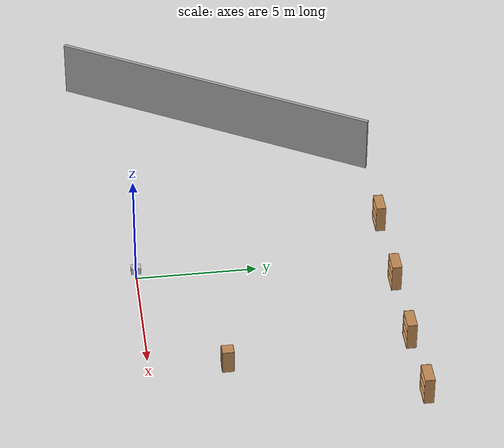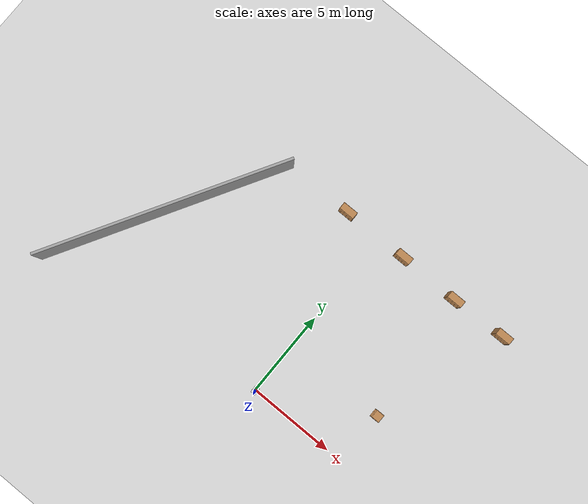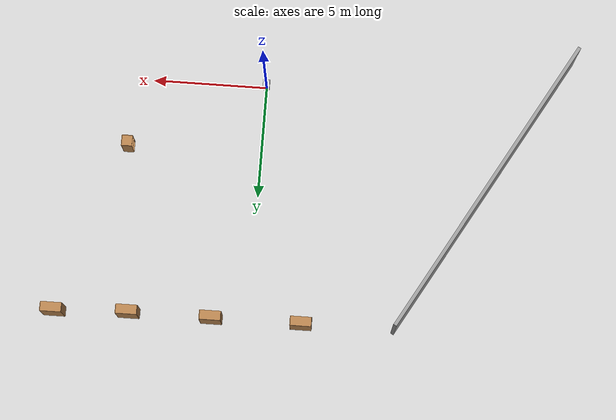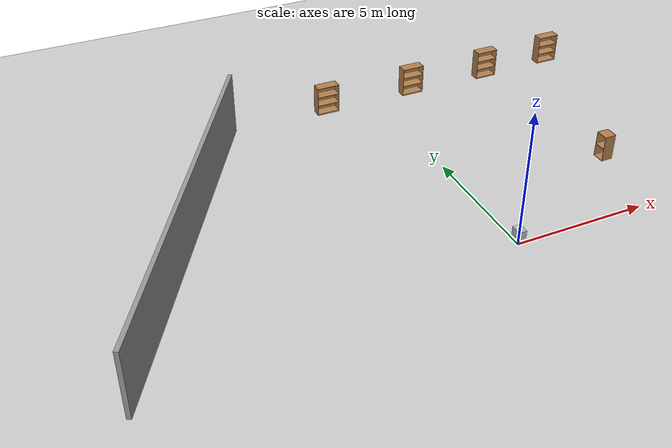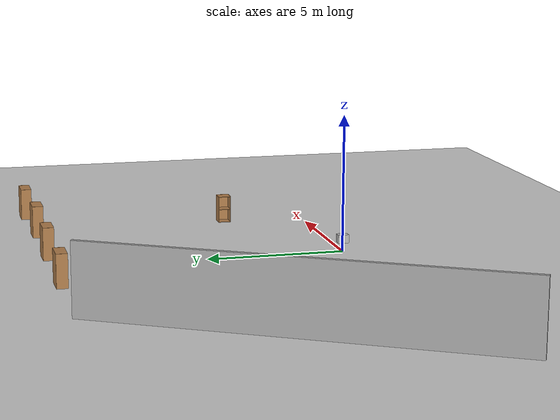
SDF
<sdf version="1.6">
 <world name="default">
  <model name="animated_box5">
   <pose>0 0 0.5 0 0 0</pose>
   <link name="link">
    <collision name="animated_box_collision5"><geometry><box><size>0.3 0.4 0.3</size></box></geometry></collision>
    <visual name="visual"><geometry><box><size>0.3 0.4 0.3</size></box></geometry></visual>
    <inertial>
     <inertia><ixx>1</ixx><ixy>0</ixy><ixz>0</ixz><iyy>1</iyy><iyz>0</iyz><izz>1</izz></inertia>
     <mass>1</mass>
    </inertial>
    <gravity>0</gravity>
   </link>
   <plugin name="push_animate5" filename="libbox_forward_movement18.so"/>
  </model>
  <model name="ground_plane">
   <static>1</static>
   <link name="link">
    <collision name="collision">
     <geometry><plane><normal>0 0 1</normal><size>100 100</size></plane></geometry>
     <surface><friction><ode><mu>100</mu><mu2>50</mu2></ode></friction></surface>
    </collision>
    <visual name="visual">
     <cast_shadows>0</cast_shadows>
     <geometry><plane><normal>0 0 1</normal><size>100 100</size></plane></geometry>
     <material>
      <script><uri>file://media/materials/scripts/gazebo.material</uri><name>Gazebo/Grey</name></script>
     </material>
    </visual>
   </link>
  </model>
  <model name="room10">
   <pose>-9.79599 4.32214 0 0 -0 0</pose>
   <link name="Wall_0">
    <collision name="Wall_0_Collision">
     <geometry><box><size>14.5 0.15 2.5</size></box></geometry>
     <pose>0 0 1.25 0 -0 0</pose>
    </collision>
    <visual name="Wall_0_Visual">
     <pose>0 0 1.25 0 -0 0</pose>
     <geometry><box><size>14.5 0.15 2.5</size></box></geometry>
     <material>
      <script><uri>file://media/materials/scripts/gazebo.material</uri><name>Gazebo/Grey</name></script>
      <ambient>1 1 1 1</ambient>
     </material>
     <meta><layer>0</layer></meta>
    </visual>
    <pose>0 0 0 0 -0 -2.0944</pose>
   </link>
   <static>1</static>
  </model>
  <model name="bookshelf">
   <static>1</static>
   <link name="link">
    <inertial><mass>1</mass></inertial>
    <collision name="back">
     <pose>0 0.005 0.6 0 -0 0</pose>
     <geometry><box><size>0.9 0.01 1.2</size></box></geometry>
    </collision>
    <visual name="visual1">
     <pose>0 0.005 0.6 0 -0 0</pose>
     <geometry><box><size>0.9 0.01 1.2</size></box></geometry>
     <material>
      <script><uri>file://media/materials/scripts/gazebo.material</uri><name>Gazebo/Wood</name></script>
     </material>
    </visual>
    <collision name="left_side">
     <pose>0.45 -0.195 0.6 0 -0 0</pose>
     <geometry><box><size>0.02 0.4 1.2</size></box></geometry>
    </collision>
    <visual name="visual2">
     <pose>0.45 -0.195 0.6 0 -0 0</pose>
     <geometry><box><size>0.02 0.4 1.2</size></box></geometry>
     <material>
      <script><uri>file://media/materials/scripts/gazebo.material</uri><name>Gazebo/Wood</name></script>
     </material>
    </visual>
    <collision name="right_side">
     <pose>-0.45 -0.195 0.6 0 -0 0</pose>
     <geometry><box><size>0.02 0.4 1.2</size></box></geometry>
    </collision>
    <visual name="visual3">
     <pose>-0.45 -0.195 0.6 0 -0 0</pose>
     <geometry><box><size>0.02 0.4 1.2</size></box></geometry>
     <material>
      <script><uri>file://media/materials/scripts/gazebo.material</uri><name>Gazebo/Wood</name></script>
     </material>
    </visual>
    <collision name="bottom">
     <pose>0 -0.195 0.03 0 -0 0</pose>
     <geometry><box><size>0.88 0.4 0.06</size></box></geometry>
    </collision>
    <visual name="visual4">
     <pose>0 -0.195 0.03 0 -0 0</pose>
     <geometry><box><size>0.88 0.4 0.06</size></box></geometry>
     <material>
      <script><uri>file://media/materials/scripts/gazebo.material</uri><name>Gazebo/Wood</name></script>
     </material>
    </visual>
    <collision name="top">
     <pose>0 -0.195 1.19 0 -0 0</pose>
     <geometry><box><size>0.88 0.4 0.02</size></box></geometry>
    </collision>
    <visual name="visual5">
     <pose>0 -0.195 1.19 0 -0 0</pose>
     <geometry><box><size>0.88 0.4 0.02</size></box></geometry>
     <material>
      <script><uri>file://media/materials/scripts/gazebo.material</uri><name>Gazebo/Wood</name></script>
     </material>
    </visual>
    <collision name="low_shelf">
     <pose>0 -0.195 0.43 0 -0 0</pose>
     <geometry><box><size>0.88 0.4 0.02</size></box></geometry>
    </collision>
    <visual name="visual6">
     <pose>0 -0.195 0.43 0 -0 0</pose>
     <geometry><box><size>0.88 0.4 0.02</size></box></geometry>
     <material>
      <script><uri>file://media/materials/scripts/gazebo.material</uri><name>Gazebo/Wood</name></script>
     </material>
    </visual>
    <collision name="high_shelf">
     <pose>0 -0.195 0.8 0 -0 0</pose>
     <geometry><box><size>0.88 0.4 0.02</size></box></geometry>
    </collision>
    <visual name="visual7">
     <pose>0 -0.195 0.8 0 -0 0</pose>
     <geometry><box><size>0.88 0.4 0.02</size></box></geometry>
     <material>
      <script><uri>file://media/materials/scripts/gazebo.material</uri><name>Gazebo/Wood</name></script>
     </material>
    </visual>
   </link>
   <pose>-2.27111 10.6899 0 0 -0 0</pose>
  </model>
  <model name="bookshelf_0">
   <static>1</static>
   <link name="link">
    <inertial><mass>1</mass></inertial>
    <collision name="back">
     <pose>0 0.005 0.6 0 -0 0</pose>
     <geometry><box><size>0.9 0.01 1.2</size></box></geometry>
    </collision>
    <visual name="visual1">
     <pose>0 0.005 0.6 0 -0 0</pose>
     <geometry><box><size>0.9 0.01 1.2</size></box></geometry>
     <material>
      <script><uri>file://media/materials/scripts/gazebo.material</uri><name>Gazebo/Wood</name></script>
     </material>
    </visual>
    <collision name="left_side">
     <pose>0.45 -0.195 0.6 0 -0 0</pose>
     <geometry><box><size>0.02 0.4 1.2</size></box></geometry>
    </collision>
    <visual name="visual2">
     <pose>0.45 -0.195 0.6 0 -0 0</pose>
     <geometry><box><size>0.02 0.4 1.2</size></box></geometry>
     <material>
      <script><uri>file://media/materials/scripts/gazebo.material</uri><name>Gazebo/Wood</name></script>
     </material>
    </visual>
    <collision name="right_side">
     <pose>-0.45 -0.195 0.6 0 -0 0</pose>
     <geometry><box><size>0.02 0.4 1.2</size></box></geometry>
    </collision>
    <visual name="visual3">
     <pose>-0.45 -0.195 0.6 0 -0 0</pose>
     <geometry><box><size>0.02 0.4 1.2</size></box></geometry>
     <material>
      <script><uri>file://media/materials/scripts/gazebo.material</uri><name>Gazebo/Wood</name></script>
     </material>
    </visual>
    <collision name="bottom">
     <pose>0 -0.195 0.03 0 -0 0</pose>
     <geometry><box><size>0.88 0.4 0.06</size></box></geometry>
    </collision>
    <visual name="visual4">
     <pose>0 -0.195 0.03 0 -0 0</pose>
     <geometry><box><size>0.88 0.4 0.06</size></box></geometry>
     <material>
      <script><uri>file://media/materials/scripts/gazebo.material</uri><name>Gazebo/Wood</name></script>
     </material>
    </visual>
    <collision name="top">
     <pose>0 -0.195 1.19 0 -0 0</pose>
     <geometry><box><size>0.88 0.4 0.02</size></box></geometry>
    </collision>
    <visual name="visual5">
     <pose>0 -0.195 1.19 0 -0 0</pose>
     <geometry><box><size>0.88 0.4 0.02</size></box></geometry>
     <material>
      <script><uri>file://media/materials/scripts/gazebo.material</uri><name>Gazebo/Wood</name></script>
     </material>
    </visual>
    <collision name="low_shelf">
     <pose>0 -0.195 0.43 0 -0 0</pose>
     <geometry><box><size>0.88 0.4 0.02</size></box></geometry>
    </collision>
    <visual name="visual6">
     <pose>0 -0.195 0.43 0 -0 0</pose>
     <geometry><box><size>0.88 0.4 0.02</size></box></geometry>
     <material>
      <script><uri>file://media/materials/scripts/gazebo.material</uri><name>Gazebo/Wood</name></script>
     </material>
    </visual>
    <collision name="high_shelf">
     <pose>0 -0.195 0.8 0 -0 0</pose>
     <geometry><box><size>0.88 0.4 0.02</size></box></geometry>
    </collision>
    <visual name="visual7">
     <pose>0 -0.195 0.8 0 -0 0</pose>
     <geometry><box><size>0.88 0.4 0.02</size></box></geometry>
     <material>
      <script><uri>file://media/materials/scripts/gazebo.material</uri><name>Gazebo/Wood</name></script>
     </material>
    </visual>
   </link>
   <pose>1.55418 10.6949 0 0 -0 0</pose>
  </model>
  <model name="bookshelf_1">
   <static>1</static>
   <link name="link">
    <inertial><mass>1</mass></inertial>
    <collision name="back">
     <pose>0 0.005 0.6 0 -0 0</pose>
     <geometry><box><size>0.9 0.01 1.2</size></box></geometry>
    </collision>
    <visual name="visual1">
     <pose>0 0.005 0.6 0 -0 0</pose>
     <geometry><box><size>0.9 0.01 1.2</size></box></geometry>
     <material>
      <script><uri>file://media/materials/scripts/gazebo.material</uri><name>Gazebo/Wood</name></script>
     </material>
    </visual>
    <collision name="left_side">
     <pose>0.45 -0.195 0.6 0 -0 0</pose>
     <geometry><box><size>0.02 0.4 1.2</size></box></geometry>
    </collision>
    <visual name="visual2">
     <pose>0.45 -0.195 0.6 0 -0 0</pose>
     <geometry><box><size>0.02 0.4 1.2</size></box></geometry>
     <material>
      <script><uri>file://media/materials/scripts/gazebo.material</uri><name>Gazebo/Wood</name></script>
     </material>
    </visual>
    <collision name="right_side">
     <pose>-0.45 -0.195 0.6 0 -0 0</pose>
     <geometry><box><size>0.02 0.4 1.2</size></box></geometry>
    </collision>
    <visual name="visual3">
     <pose>-0.45 -0.195 0.6 0 -0 0</pose>
     <geometry><box><size>0.02 0.4 1.2</size></box></geometry>
     <material>
      <script><uri>file://media/materials/scripts/gazebo.material</uri><name>Gazebo/Wood</name></script>
     </material>
    </visual>
    <collision name="bottom">
     <pose>0 -0.195 0.03 0 -0 0</pose>
     <geometry><box><size>0.88 0.4 0.06</size></box></geometry>
    </collision>
    <visual name="visual4">
     <pose>0 -0.195 0.03 0 -0 0</pose>
     <geometry><box><size>0.88 0.4 0.06</size></box></geometry>
     <material>
      <script><uri>file://media/materials/scripts/gazebo.material</uri><name>Gazebo/Wood</name></script>
     </material>
    </visual>
    <collision name="top">
     <pose>0 -0.195 1.19 0 -0 0</pose>
     <geometry><box><size>0.88 0.4 0.02</size></box></geometry>
    </collision>
    <visual name="visual5">
     <pose>0 -0.195 1.19 0 -0 0</pose>
     <geometry><box><size>0.88 0.4 0.02</size></box></geometry>
     <material>
      <script><uri>file://media/materials/scripts/gazebo.material</uri><name>Gazebo/Wood</name></script>
     </material>
    </visual>
    <collision name="low_shelf">
     <pose>0 -0.195 0.43 0 -0 0</pose>
     <geometry><box><size>0.88 0.4 0.02</size></box></geometry>
    </collision>
    <visual name="visual6">
     <pose>0 -0.195 0.43 0 -0 0</pose>
     <geometry><box><size>0.88 0.4 0.02</size></box></geometry>
     <material>
      <script><uri>file://media/materials/scripts/gazebo.material</uri><name>Gazebo/Wood</name></script>
     </material>
    </visual>
    <collision name="high_shelf">
     <pose>0 -0.195 0.8 0 -0 0</pose>
     <geometry><box><size>0.88 0.4 0.02</size></box></geometry>
    </collision>
    <visual name="visual7">
     <pose>0 -0.195 0.8 0 -0 0</pose>
     <geometry><box><size>0.88 0.4 0.02</size></box></geometry>
     <material>
      <script><uri>file://media/materials/scripts/gazebo.material</uri><name>Gazebo/Wood</name></script>
     </material>
    </visual>
   </link>
   <pose>5.09215 10.6814 0 0 -0 0</pose>
  </model>
  <model name="bookshelf_2">
   <static>1</static>
   <link name="link">
    <inertial><mass>1</mass></inertial>
    <collision name="back">
     <pose>0 0.005 0.6 0 -0 0</pose>
     <geometry><box><size>0.9 0.01 1.2</size></box></geometry>
    </collision>
    <visual name="visual1">
     <pose>0 0.005 0.6 0 -0 0</pose>
     <geometry><box><size>0.9 0.01 1.2</size></box></geometry>
     <material>
      <script><uri>file://media/materials/scripts/gazebo.material</uri><name>Gazebo/Wood</name></script>
     </material>
    </visual>
    <collision name="left_side">
     <pose>0.45 -0.195 0.6 0 -0 0</pose>
     <geometry><box><size>0.02 0.4 1.2</size></box></geometry>
    </collision>
    <visual name="visual2">
     <pose>0.45 -0.195 0.6 0 -0 0</pose>
     <geometry><box><size>0.02 0.4 1.2</size></box></geometry>
     <material>
      <script><uri>file://media/materials/scripts/gazebo.material</uri><name>Gazebo/Wood</name></script>
     </material>
    </visual>
    <collision name="right_side">
     <pose>-0.45 -0.195 0.6 0 -0 0</pose>
     <geometry><box><size>0.02 0.4 1.2</size></box></geometry>
    </collision>
    <visual name="visual3">
     <pose>-0.45 -0.195 0.6 0 -0 0</pose>
     <geometry><box><size>0.02 0.4 1.2</size></box></geometry>
     <material>
      <script><uri>file://media/materials/scripts/gazebo.material</uri><name>Gazebo/Wood</name></script>
     </material>
    </visual>
    <collision name="bottom">
     <pose>0 -0.195 0.03 0 -0 0</pose>
     <geometry><box><size>0.88 0.4 0.06</size></box></geometry>
    </collision>
    <visual name="visual4">
     <pose>0 -0.195 0.03 0 -0 0</pose>
     <geometry><box><size>0.88 0.4 0.06</size></box></geometry>
     <material>
      <script><uri>file://media/materials/scripts/gazebo.material</uri><name>Gazebo/Wood</name></script>
     </material>
    </visual>
    <collision name="top">
     <pose>0 -0.195 1.19 0 -0 0</pose>
     <geometry><box><size>0.88 0.4 0.02</size></box></geometry>
    </collision>
    <visual name="visual5">
     <pose>0 -0.195 1.19 0 -0 0</pose>
     <geometry><box><size>0.88 0.4 0.02</size></box></geometry>
     <material>
      <script><uri>file://media/materials/scripts/gazebo.material</uri><name>Gazebo/Wood</name></script>
     </material>
    </visual>
    <collision name="low_shelf">
     <pose>0 -0.195 0.43 0 -0 0</pose>
     <geometry><box><size>0.88 0.4 0.02</size></box></geometry>
    </collision>
    <visual name="visual6">
     <pose>0 -0.195 0.43 0 -0 0</pose>
     <geometry><box><size>0.88 0.4 0.02</size></box></geometry>
     <material>
      <script><uri>file://media/materials/scripts/gazebo.material</uri><name>Gazebo/Wood</name></script>
     </material>
    </visual>
    <collision name="high_shelf">
     <pose>0 -0.195 0.8 0 -0 0</pose>
     <geometry><box><size>0.88 0.4 0.02</size></box></geometry>
    </collision>
    <visual name="visual7">
     <pose>0 -0.195 0.8 0 -0 0</pose>
     <geometry><box><size>0.88 0.4 0.02</size></box></geometry>
     <material>
      <script><uri>file://media/materials/scripts/gazebo.material</uri><name>Gazebo/Wood</name></script>
     </material>
    </visual>
   </link>
   <pose>8.27078 10.7934 0 0 -0 0</pose>
  </model>
  <model name="cabinet_0">
   <static>1</static>
   <link name="cabinet_bottom_plate">
    <inertial>
     <pose>0 0 -1 0 -0 0</pose>
     <inertia><ixx>2.05</ixx><ixy>0</ixy><ixz>0</ixz><iyy>2.05</iyy><iyz>0</iyz><izz>2.05</izz></inertia>
     <mass>25</mass>
    </inertial>
    <collision name="cabinet_bottom_plate_geom">
     <pose>0 0 0.01 0 -0 0</pose>
     <geometry><box><size>0.45 0.45 0.02</size></box></geometry>
    </collision>
    <visual name="cabinet_bottom_plate_geom_visual">
     <pose>0 0 0.01 0 -0 0</pose>
     <geometry><box><size>0.45 0.45 0.02</size></box></geometry>
     <material>
      <script><uri>file://media/materials/scripts/gazebo.material</uri><name>Gazebo/Wood</name></script>
     </material>
    </visual>
    <collision name="cabinet_bottom_plate_geom_cabinet_back_plate">
     <pose>0.235 0 0.51 0 -0 0</pose>
     <geometry><box><size>0.02 0.45 1.02</size></box></geometry>
    </collision>
    <visual name="cabinet_bottom_plate_geom_cabinet_back_plate_visual">
     <pose>0.235 0 0.51 0 -0 0</pose>
     <geometry><box><size>0.02 0.45 1.02</size></box></geometry>
     <material>
      <script><uri>file://media/materials/scripts/gazebo.material</uri><name>Gazebo/Wood</name></script>
     </material>
    </visual>
    <collision name="cabinet_bottom_plate_geom_cabinet_left_plate">
     <pose>0 0.235 0.51 0 -0 0</pose>
     <geometry><box><size>0.45 0.02 1.02</size></box></geometry>
    </collision>
    <visual name="cabinet_bottom_plate_geom_cabinet_left_plate_visual">
     <pose>0 0.235 0.51 0 -0 0</pose>
     <geometry><box><size>0.45 0.02 1.02</size></box></geometry>
     <material>
      <script><uri>file://media/materials/scripts/gazebo.material</uri><name>Gazebo/Wood</name></script>
     </material>
    </visual>
    <collision name="cabinet_bottom_plate_geom_cabinet_middle_plate">
     <pose>0 0 0.51 0 -0 0</pose>
     <geometry><box><size>0.45 0.45 0.02</size></box></geometry>
    </collision>
    <visual name="cabinet_bottom_plate_geom_cabinet_middle_plate_visual">
     <pose>0 0 0.51 0 -0 0</pose>
     <geometry><box><size>0.45 0.45 0.02</size></box></geometry>
     <material>
      <script><uri>file://media/materials/scripts/gazebo.material</uri><name>Gazebo/Wood</name></script>
     </material>
    </visual>
    <collision name="cabinet_bottom_plate_geom_cabinet_right_plate">
     <pose>0 -0.235 0.51 0 -0 0</pose>
     <geometry><box><size>0.45 0.02 1.02</size></box></geometry>
    </collision>
    <visual name="cabinet_bottom_plate_geom_cabinet_right_plate_visual">
     <pose>0 -0.235 0.51 0 -0 0</pose>
     <geometry><box><size>0.45 0.02 1.02</size></box></geometry>
     <material>
      <script><uri>file://media/materials/scripts/gazebo.material</uri><name>Gazebo/Wood</name></script>
     </material>
    </visual>
    <collision name="cabinet_bottom_plate_geom_cabinet_top_plate">
     <pose>0 0 1.01 0 -0 0</pose>
     <geometry><box><size>0.45 0.45 0.02</size></box></geometry>
    </collision>
    <visual name="cabinet_bottom_plate_geom_cabinet_top_plate_visual">
     <pose>0 0 1.01 0 -0 0</pose>
     <geometry><box><size>0.45 0.45 0.02</size></box></geometry>
     <material>
      <script><uri>file://media/materials/scripts/gazebo.material</uri><name>Gazebo/Wood</name></script>
     </material>
    </visual>
   </link>
   <pose>5.80141 3.10273 0 0 -0 0</pose>
  </model>
 </world>
</sdf>
